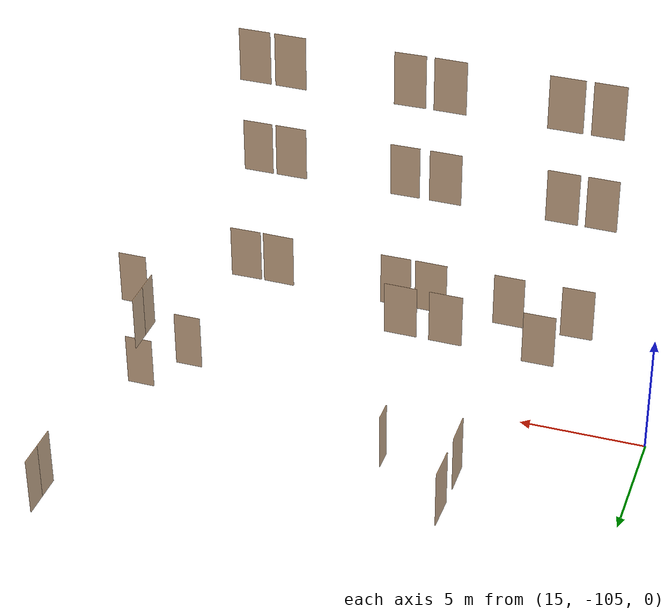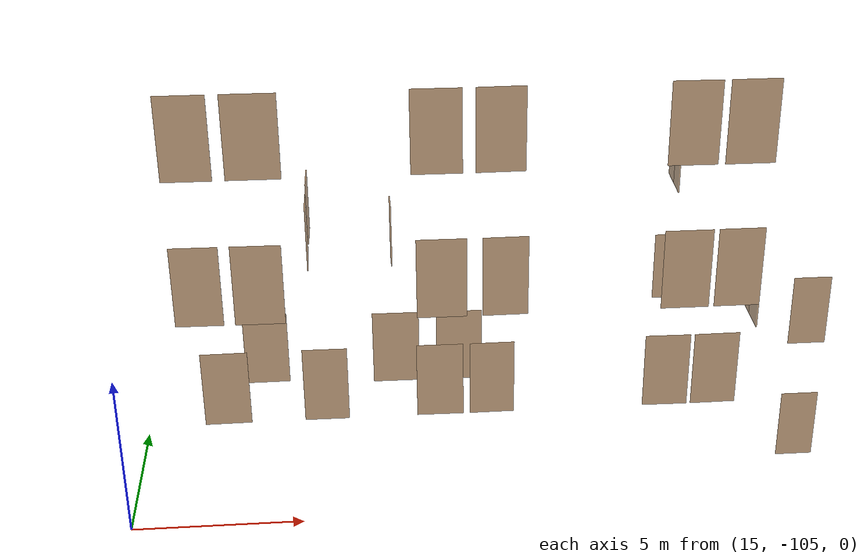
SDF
<sdf version="1.7">
 <world name="sim_world">
  <model name="Snull17">
   <pose>35.226505619236065 -102.68442668857105 0.0 0 0 3.141592653589793</pose>
   <link name="right">
    <pose>0 0 1.11 0 0 0</pose>
    <visual name="right_visual">
     <geometry><box><size>1.1178422880185204 0.03 2.2</size></box></geometry>
     <material>
      <ambient>0.5 0.25 0 0.6</ambient>
      <diffuse>0.5 0.25 0 0.6</diffuse>
      <pbr><metal><metalness>0.0</metalness></metal></pbr>
     </material>
    </visual>
    <collision name="right_collision">
     <geometry><box><size>1.1178422880185204 0.03 2.2</size></box></geometry>
     <surface><contact><collide_bitmask>0x02</collide_bitmask></contact></surface>
    </collision>
    <inertial>
     <mass>50.0</mass>
     <inertia><ixx>20.17041666666667</ixx><iyy>25.37321408701034</iyy><izz>5.210297420343669</izz></inertia>
    </inertial>
   </link>
   <joint name="right_joint" type="revolute">
    <parent>world</parent>
    <child>right</child>
    <axis><xyz>0 0 -1</xyz><limit><lower>0</lower><upper>1.57</upper></limit></axis>
    <pose>0.5639211440092602 0 0 0 0 0</pose>
   </joint>
   <plugin name="register_component" filename="libregister_component.so">
    <component name="Door">
     <v_max_door>0.5</v_max_door>
     <a_max_door>0.3</a_max_door>
     <a_nom_door>0.15</a_nom_door>
     <dx_min_door>0.01</dx_min_door>
     <f_max_door>500.0</f_max_door>
     <ros_interface>true</ros_interface>
     <door name="Snull17" type="SwingDoor" left_joint_name="empty_joint" right_joint_name="right_joint"/>
    </component>
   </plugin>
  </model>
  <model name="0null17">
   <pose>35.226505619236065 -102.68442668857105 4.0 0 0 3.141592653589793</pose>
   <link name="right">
    <pose>0 0 1.11 0 0 0</pose>
    <visual name="right_visual">
     <geometry><box><size>1.1178422880185204 0.03 2.2</size></box></geometry>
     <material>
      <ambient>0.5 0.25 0 0.6</ambient>
      <diffuse>0.5 0.25 0 0.6</diffuse>
      <pbr><metal><metalness>0.0</metalness></metal></pbr>
     </material>
    </visual>
    <collision name="right_collision">
     <geometry><box><size>1.1178422880185204 0.03 2.2</size></box></geometry>
     <surface><contact><collide_bitmask>0x02</collide_bitmask></contact></surface>
    </collision>
    <inertial>
     <mass>50.0</mass>
     <inertia><ixx>20.17041666666667</ixx><iyy>25.37321408701034</iyy><izz>5.210297420343669</izz></inertia>
    </inertial>
   </link>
   <joint name="right_joint" type="revolute">
    <parent>world</parent>
    <child>right</child>
    <axis><xyz>0 0 -1</xyz><limit><lower>0</lower><upper>1.57</upper></limit></axis>
    <pose>0.5639211440092602 0 0 0 0 0</pose>
   </joint>
   <plugin name="register_component" filename="libregister_component.so">
    <component name="Door">
     <v_max_door>0.5</v_max_door>
     <a_max_door>0.3</a_max_door>
     <a_nom_door>0.15</a_nom_door>
     <dx_min_door>0.01</dx_min_door>
     <f_max_door>500.0</f_max_door>
     <ros_interface>true</ros_interface>
     <door name="0null17" type="SwingDoor" left_joint_name="empty_joint" right_joint_name="right_joint"/>
    </component>
   </plugin>
  </model>
  <model name="0null60">
   <pose>33.57039913377887 -90.70772504947163 4.0 0 0 1.5707963267948966</pose>
   <link name="right">
    <pose>0.44838143598551383 0 1.11 0 0 0</pose>
    <visual name="right_visual">
     <geometry><box><size>0.8867628719710277 0.03 2.2</size></box></geometry>
     <material>
      <ambient>0.5 0.25 0 0.6</ambient>
      <diffuse>0.5 0.25 0 0.6</diffuse>
      <pbr><metal><metalness>0.0</metalness></metal></pbr>
     </material>
    </visual>
    <collision name="right_collision">
     <geometry><box><size>0.8867628719710277 0.03 2.2</size></box></geometry>
     <surface><contact><collide_bitmask>0x02</collide_bitmask></contact></surface>
    </collision>
    <inertial>
     <mass>50.0</mass>
     <inertia><ixx>20.17041666666667</ixx><iyy>23.443118296276275</iyy><izz>3.2802016296096053</izz></inertia>
    </inertial>
   </link>
   <joint name="right_joint" type="revolute">
    <parent>world</parent>
    <child>right</child>
    <axis><xyz>0 0 1</xyz><limit><lower>0</lower><upper>1.57</upper></limit></axis>
    <pose>0.44838143598551383 0 0 0 0 0</pose>
   </joint>
   <link name="left">
    <pose>-0.44838143598551383 0 1.11 0 0 0</pose>
    <visual name="left_visual">
     <geometry><box><size>0.8867628719710277 0.03 2.2</size></box></geometry>
     <material>
      <ambient>0.5 0.25 0 0.6</ambient>
      <diffuse>0.5 0.25 0 0.6</diffuse>
      <pbr><metal><metalness>0.0</metalness></metal></pbr>
     </material>
    </visual>
    <collision name="left_collision">
     <geometry><box><size>0.8867628719710277 0.03 2.2</size></box></geometry>
     <surface><contact><collide_bitmask>0x02</collide_bitmask></contact></surface>
    </collision>
    <inertial>
     <mass>50.0</mass>
     <inertia><ixx>20.17041666666667</ixx><iyy>23.443118296276275</iyy><izz>3.2802016296096053</izz></inertia>
    </inertial>
   </link>
   <joint name="left_joint" type="revolute">
    <parent>world</parent>
    <child>left</child>
    <axis><xyz>0 0 1</xyz><limit><lower>-1.57</lower><upper>0</upper></limit></axis>
    <pose>-0.44838143598551383 0 0 0 0 0</pose>
   </joint>
   <plugin name="register_component" filename="libregister_component.so">
    <component name="Door">
     <v_max_door>0.5</v_max_door>
     <a_max_door>0.3</a_max_door>
     <a_nom_door>0.15</a_nom_door>
     <dx_min_door>0.01</dx_min_door>
     <f_max_door>500.0</f_max_door>
     <ros_interface>true</ros_interface>
     <door name="0null60" type="DoubleSwingDoor" left_joint_name="left_joint" right_joint_name="right_joint"/>
    </component>
   </plugin>
  </model>
  <model name="0null63">
   <pose>20.18616286450359 -96.13930478288461 4.0 0 0 1.5835833536071844</pose>
   <link name="right">
    <pose>0 0 1.11 0 0 0</pose>
    <visual name="right_visual">
     <geometry><box><size>1.24560053945507 0.03 2.2</size></box></geometry>
     <material>
      <ambient>0.5 0.25 0 0.6</ambient>
      <diffuse>0.5 0.25 0 0.6</diffuse>
      <pbr><metal><metalness>0.0</metalness></metal></pbr>
     </material>
    </visual>
    <collision name="right_collision">
     <geometry><box><size>1.24560053945507 0.03 2.2</size></box></geometry>
     <surface><contact><collide_bitmask>0x02</collide_bitmask></contact></surface>
    </collision>
    <inertial>
     <mass>50.0</mass>
     <inertia><ixx>20.17041666666667</ixx><iyy>26.631336266211513</iyy><izz>6.4684195995448395</izz></inertia>
    </inertial>
   </link>
   <joint name="right_joint" type="revolute">
    <parent>world</parent>
    <child>right</child>
    <axis><xyz>0 0 -1</xyz><limit><lower>0</lower><upper>1.57</upper></limit></axis>
    <pose>0.627800269727535 0 0 0 0 0</pose>
   </joint>
   <plugin name="register_component" filename="libregister_component.so">
    <component name="Door">
     <v_max_door>0.5</v_max_door>
     <a_max_door>0.3</a_max_door>
     <a_nom_door>0.15</a_nom_door>
     <dx_min_door>0.01</dx_min_door>
     <f_max_door>500.0</f_max_door>
     <ros_interface>true</ros_interface>
     <door name="0null63" type="SwingDoor" left_joint_name="empty_joint" right_joint_name="right_joint"/>
    </component>
   </plugin>
  </model>
  <model name="0null64">
   <pose>20.188216405929122 -94.12750625396701 4.0 0 0 -1.5826627654357746</pose>
   <link name="right">
    <pose>0 0 1.11 0 0 0</pose>
    <visual name="right_visual">
     <geometry><box><size>1.2611943041755385 0.03 2.2</size></box></geometry>
     <material>
      <ambient>0.5 0.25 0 0.6</ambient>
      <diffuse>0.5 0.25 0 0.6</diffuse>
      <pbr><metal><metalness>0.0</metalness></metal></pbr>
     </material>
    </visual>
    <collision name="right_collision">
     <geometry><box><size>1.2611943041755385 0.03 2.2</size></box></geometry>
     <surface><contact><collide_bitmask>0x02</collide_bitmask></contact></surface>
    </collision>
    <inertial>
     <mass>50.0</mass>
     <inertia><ixx>20.17041666666667</ixx><iyy>26.794212803686758</iyy><izz>6.631296137020086</izz></inertia>
    </inertial>
   </link>
   <joint name="right_joint" type="revolute">
    <parent>world</parent>
    <child>right</child>
    <axis><xyz>0 0 1</xyz><limit><lower>0</lower><upper>1.57</upper></limit></axis>
    <pose>0.6355971520877692 0 0 0 0 0</pose>
   </joint>
   <plugin name="register_component" filename="libregister_component.so">
    <component name="Door">
     <v_max_door>0.5</v_max_door>
     <a_max_door>0.3</a_max_door>
     <a_nom_door>0.15</a_nom_door>
     <dx_min_door>0.01</dx_min_door>
     <f_max_door>500.0</f_max_door>
     <ros_interface>true</ros_interface>
     <door name="0null64" type="SwingDoor" left_joint_name="empty_joint" right_joint_name="right_joint"/>
    </component>
   </plugin>
  </model>
  <model name="0null65">
   <pose>22.95015494903482 -96.27140350222149 4.0 0 0 1.5813201833732315</pose>
   <link name="right">
    <pose>0 0 1.11 0 0 0</pose>
    <visual name="right_visual">
     <geometry><box><size>0.7492549775247888 0.03 2.2</size></box></geometry>
     <material>
      <ambient>0.5 0.25 0 0.6</ambient>
      <diffuse>0.5 0.25 0 0.6</diffuse>
      <pbr><metal><metalness>0.0</metalness></metal></pbr>
     </material>
    </visual>
    <collision name="right_collision">
     <geometry><box><size>0.7492549775247888 0.03 2.2</size></box></geometry>
     <surface><contact><collide_bitmask>0x02</collide_bitmask></contact></surface>
    </collision>
    <inertial>
     <mass>50.0</mass>
     <inertia><ixx>20.17041666666667</ixx><iyy>22.505762588940303</iyy><izz>2.3428459222736326</izz></inertia>
    </inertial>
   </link>
   <joint name="right_joint" type="revolute">
    <parent>world</parent>
    <child>right</child>
    <axis><xyz>0 0 1</xyz><limit><lower>0</lower><upper>1.57</upper></limit></axis>
    <pose>0.3796274887623944 0 0 0 0 0</pose>
   </joint>
   <plugin name="register_component" filename="libregister_component.so">
    <component name="Door">
     <v_max_door>0.5</v_max_door>
     <a_max_door>0.3</a_max_door>
     <a_nom_door>0.15</a_nom_door>
     <dx_min_door>0.01</dx_min_door>
     <f_max_door>500.0</f_max_door>
     <ros_interface>true</ros_interface>
     <door name="0null65" type="SwingDoor" left_joint_name="empty_joint" right_joint_name="right_joint"/>
    </component>
   </plugin>
  </model>
  <model name="0null66">
   <pose>19.16971586454093 -103.64021954224688 4.0 0 0 0.006799978698178858</pose>
   <link name="right">
    <pose>0 0 1.11 0 0 0</pose>
    <visual name="right_visual">
     <geometry><box><size>1.2419051338744223 0.03 2.2</size></box></geometry>
     <material>
      <ambient>0.5 0.25 0 0.6</ambient>
      <diffuse>0.5 0.25 0 0.6</diffuse>
      <pbr><metal><metalness>0.0</metalness></metal></pbr>
     </material>
    </visual>
    <collision name="right_collision">
     <geometry><box><size>1.2419051338744223 0.03 2.2</size></box></geometry>
     <surface><contact><collide_bitmask>0x02</collide_bitmask></contact></surface>
    </collision>
    <inertial>
     <mass>50.0</mass>
     <inertia><ixx>20.17041666666667</ixx><iyy>26.5930348397652</iyy><izz>6.430118173098528</izz></inertia>
    </inertial>
   </link>
   <joint name="right_joint" type="revolute">
    <parent>world</parent>
    <child>right</child>
    <axis><xyz>0 0 -1</xyz><limit><lower>0</lower><upper>1.57</upper></limit></axis>
    <pose>0.6259525669372111 0 0 0 0 0</pose>
   </joint>
   <plugin name="register_component" filename="libregister_component.so">
    <component name="Door">
     <v_max_door>0.5</v_max_door>
     <a_max_door>0.3</a_max_door>
     <a_nom_door>0.15</a_nom_door>
     <dx_min_door>0.01</dx_min_door>
     <f_max_door>500.0</f_max_door>
     <ros_interface>true</ros_interface>
     <door name="0null66" type="SwingDoor" left_joint_name="empty_joint" right_joint_name="right_joint"/>
    </component>
   </plugin>
  </model>
  <model name="0null67">
   <pose>22.862132696113193 -103.85111824664892 4.0 0 0 -0.007718906835754375</pose>
   <link name="right">
    <pose>0 0 1.11 0 0 0</pose>
    <visual name="right_visual">
     <geometry><box><size>1.3105411505811324 0.03 2.2</size></box></geometry>
     <material>
      <ambient>0.5 0.25 0 0.6</ambient>
      <diffuse>0.5 0.25 0 0.6</diffuse>
      <pbr><metal><metalness>0.0</metalness></metal></pbr>
     </material>
    </visual>
    <collision name="right_collision">
     <geometry><box><size>1.3105411505811324 0.03 2.2</size></box></geometry>
     <surface><contact><collide_bitmask>0x02</collide_bitmask></contact></surface>
    </collision>
    <inertial>
     <mass>50.0</mass>
     <inertia><ixx>20.17041666666667</ixx><iyy>27.322992114027166</iyy><izz>7.1600754473604935</izz></inertia>
    </inertial>
   </link>
   <joint name="right_joint" type="revolute">
    <parent>world</parent>
    <child>right</child>
    <axis><xyz>0 0 -1</xyz><limit><lower>0</lower><upper>1.57</upper></limit></axis>
    <pose>0.6602705752905662 0 0 0 0 0</pose>
   </joint>
   <plugin name="register_component" filename="libregister_component.so">
    <component name="Door">
     <v_max_door>0.5</v_max_door>
     <a_max_door>0.3</a_max_door>
     <a_nom_door>0.15</a_nom_door>
     <dx_min_door>0.01</dx_min_door>
     <f_max_door>500.0</f_max_door>
     <ros_interface>true</ros_interface>
     <door name="0null67" type="SwingDoor" left_joint_name="empty_joint" right_joint_name="right_joint"/>
    </component>
   </plugin>
  </model>
  <model name="0null68">
   <pose>24.66439532539296 -103.86896538849263 4.0 0 0 3.1298930987487013</pose>
   <link name="right">
    <pose>0 0 1.11 0 0 0</pose>
    <visual name="right_visual">
     <geometry><box><size>1.2952829252233309 0.03 2.2</size></box></geometry>
     <material>
      <ambient>0.5 0.25 0 0.6</ambient>
      <diffuse>0.5 0.25 0 0.6</diffuse>
      <pbr><metal><metalness>0.0</metalness></metal></pbr>
     </material>
    </visual>
    <collision name="right_collision">
     <geometry><box><size>1.2952829252233309 0.03 2.2</size></box></geometry>
     <surface><contact><collide_bitmask>0x02</collide_bitmask></contact></surface>
    </collision>
    <inertial>
     <mass>50.0</mass>
     <inertia><ixx>20.17041666666667</ixx><iyy>27.15732440156296</iyy><izz>6.994407734896288</izz></inertia>
    </inertial>
   </link>
   <joint name="right_joint" type="revolute">
    <parent>world</parent>
    <child>right</child>
    <axis><xyz>0 0 1</xyz><limit><lower>0</lower><upper>1.57</upper></limit></axis>
    <pose>0.6526414626116654 0 0 0 0 0</pose>
   </joint>
   <plugin name="register_component" filename="libregister_component.so">
    <component name="Door">
     <v_max_door>0.5</v_max_door>
     <a_max_door>0.3</a_max_door>
     <a_nom_door>0.15</a_nom_door>
     <dx_min_door>0.01</dx_min_door>
     <f_max_door>500.0</f_max_door>
     <ros_interface>true</ros_interface>
     <door name="0null68" type="SwingDoor" left_joint_name="empty_joint" right_joint_name="right_joint"/>
    </component>
   </plugin>
  </model>
  <model name="0null69">
   <pose>18.168259716984643 -105.75603927864682 4.0 0 0 0.01617173090646608</pose>
   <link name="right">
    <pose>0 0 1.11 0 0 0</pose>
    <visual name="right_visual">
     <geometry><box><size>1.25988938217987 0.03 2.2</size></box></geometry>
     <material>
      <ambient>0.5 0.25 0 0.6</ambient>
      <diffuse>0.5 0.25 0 0.6</diffuse>
      <pbr><metal><metalness>0.0</metalness></metal></pbr>
     </material>
    </visual>
    <collision name="right_collision">
     <geometry><box><size>1.25988938217987 0.03 2.2</size></box></geometry>
     <surface><contact><collide_bitmask>0x02</collide_bitmask></contact></surface>
    </collision>
    <inertial>
     <mass>50.0</mass>
     <inertia><ixx>20.17041666666667</ixx><iyy>26.780505230539898</iyy><izz>6.617588563873228</izz></inertia>
    </inertial>
   </link>
   <joint name="right_joint" type="revolute">
    <parent>world</parent>
    <child>right</child>
    <axis><xyz>0 0 1</xyz><limit><lower>0</lower><upper>1.57</upper></limit></axis>
    <pose>0.634944691089935 0 0 0 0 0</pose>
   </joint>
   <plugin name="register_component" filename="libregister_component.so">
    <component name="Door">
     <v_max_door>0.5</v_max_door>
     <a_max_door>0.3</a_max_door>
     <a_nom_door>0.15</a_nom_door>
     <dx_min_door>0.01</dx_min_door>
     <f_max_door>500.0</f_max_door>
     <ros_interface>true</ros_interface>
     <door name="0null69" type="SwingDoor" left_joint_name="empty_joint" right_joint_name="right_joint"/>
    </component>
   </plugin>
  </model>
  <model name="0null70">
   <pose>20.87564873240487 -105.74041369525438 4.0 0 0 -0.006083133474797345</pose>
   <link name="right">
    <pose>0 0 1.11 0 0 0</pose>
    <visual name="right_visual">
     <geometry><box><size>1.2114317019619647 0.03 2.2</size></box></geometry>
     <material>
      <ambient>0.5 0.25 0 0.6</ambient>
      <diffuse>0.5 0.25 0 0.6</diffuse>
      <pbr><metal><metalness>0.0</metalness></metal></pbr>
     </material>
    </visual>
    <collision name="right_collision">
     <geometry><box><size>1.2114317019619647 0.03 2.2</size></box></geometry>
     <surface><contact><collide_bitmask>0x02</collide_bitmask></contact></surface>
    </collision>
    <inertial>
     <mass>50.0</mass>
     <inertia><ixx>20.17041666666667</ixx><iyy>26.281528202160267</iyy><izz>6.118611535493594</izz></inertia>
    </inertial>
   </link>
   <joint name="right_joint" type="revolute">
    <parent>world</parent>
    <child>right</child>
    <axis><xyz>0 0 1</xyz><limit><lower>0</lower><upper>1.57</upper></limit></axis>
    <pose>0.6107158509809824 0 0 0 0 0</pose>
   </joint>
   <plugin name="register_component" filename="libregister_component.so">
    <component name="Door">
     <v_max_door>0.5</v_max_door>
     <a_max_door>0.3</a_max_door>
     <a_nom_door>0.15</a_nom_door>
     <dx_min_door>0.01</dx_min_door>
     <f_max_door>500.0</f_max_door>
     <ros_interface>true</ros_interface>
     <door name="0null70" type="SwingDoor" left_joint_name="empty_joint" right_joint_name="right_joint"/>
    </component>
   </plugin>
  </model>
  <model name="0null71">
   <pose>24.005600567524162 -105.73826681103677 4.0 0 0 -0.013497754728378332</pose>
   <link name="right">
    <pose>0 0 1.11 0 0 0</pose>
    <visual name="right_visual">
     <geometry><box><size>1.2735429760161787 0.03 2.2</size></box></geometry>
     <material>
      <ambient>0.5 0.25 0 0.6</ambient>
      <diffuse>0.5 0.25 0 0.6</diffuse>
      <pbr><metal><metalness>0.0</metalness></metal></pbr>
     </material>
    </visual>
    <collision name="right_collision">
     <geometry><box><size>1.2735429760161787 0.03 2.2</size></box></geometry>
     <surface><contact><collide_bitmask>0x02</collide_bitmask></contact></surface>
    </collision>
    <inertial>
     <mass>50.0</mass>
     <inertia><ixx>20.17041666666667</ixx><iyy>26.924632132333944</iyy><izz>6.7617154656672716</izz></inertia>
    </inertial>
   </link>
   <joint name="right_joint" type="revolute">
    <parent>world</parent>
    <child>right</child>
    <axis><xyz>0 0 1</xyz><limit><lower>0</lower><upper>1.57</upper></limit></axis>
    <pose>0.6417714880080894 0 0 0 0 0</pose>
   </joint>
   <plugin name="register_component" filename="libregister_component.so">
    <component name="Door">
     <v_max_door>0.5</v_max_door>
     <a_max_door>0.3</a_max_door>
     <a_nom_door>0.15</a_nom_door>
     <dx_min_door>0.01</dx_min_door>
     <f_max_door>500.0</f_max_door>
     <ros_interface>true</ros_interface>
     <door name="0null71" type="SwingDoor" left_joint_name="empty_joint" right_joint_name="right_joint"/>
    </component>
   </plugin>
  </model>
  <model name="0null72">
   <pose>25.436470895717413 -105.74222454542053 4.0 0 0 -3.133952271064675</pose>
   <link name="right">
    <pose>0 0 1.11 0 0 0</pose>
    <visual name="right_visual">
     <geometry><box><size>1.2214887313923475 0.03 2.2</size></box></geometry>
     <material>
      <ambient>0.5 0.25 0 0.6</ambient>
      <diffuse>0.5 0.25 0 0.6</diffuse>
      <pbr><metal><metalness>0.0</metalness></metal></pbr>
     </material>
    </visual>
    <collision name="right_collision">
     <geometry><box><size>1.2214887313923475 0.03 2.2</size></box></geometry>
     <surface><contact><collide_bitmask>0x02</collide_bitmask></contact></surface>
    </collision>
    <inertial>
     <mass>50.0</mass>
     <inertia><ixx>20.17041666666667</ixx><iyy>26.38347800382703</iyy><izz>6.22056133716036</izz></inertia>
    </inertial>
   </link>
   <joint name="right_joint" type="revolute">
    <parent>world</parent>
    <child>right</child>
    <axis><xyz>0 0 -1</xyz><limit><lower>0</lower><upper>1.57</upper></limit></axis>
    <pose>0.6157443656961737 0 0 0 0 0</pose>
   </joint>
   <plugin name="register_component" filename="libregister_component.so">
    <component name="Door">
     <v_max_door>0.5</v_max_door>
     <a_max_door>0.3</a_max_door>
     <a_nom_door>0.15</a_nom_door>
     <dx_min_door>0.01</dx_min_door>
     <f_max_door>500.0</f_max_door>
     <ros_interface>true</ros_interface>
     <door name="0null72" type="SwingDoor" left_joint_name="empty_joint" right_joint_name="right_joint"/>
    </component>
   </plugin>
  </model>
  <model name="0null73">
   <pose>30.30814322518013 -105.73806145689423 4.0 0 0 -0.013854213525104088</pose>
   <link name="right">
    <pose>0 0 1.11 0 0 0</pose>
    <visual name="right_visual">
     <geometry><box><size>1.248605645767914 0.03 2.2</size></box></geometry>
     <material>
      <ambient>0.5 0.25 0 0.6</ambient>
      <diffuse>0.5 0.25 0 0.6</diffuse>
      <pbr><metal><metalness>0.0</metalness></metal></pbr>
     </material>
    </visual>
    <collision name="right_collision">
     <geometry><box><size>1.248605645767914 0.03 2.2</size></box></geometry>
     <surface><contact><collide_bitmask>0x02</collide_bitmask></contact></surface>
    </collision>
    <inertial>
     <mass>50.0</mass>
     <inertia><ixx>20.17041666666667</ixx><iyy>26.662566911014626</iyy><izz>6.499650244347957</izz></inertia>
    </inertial>
   </link>
   <joint name="right_joint" type="revolute">
    <parent>world</parent>
    <child>right</child>
    <axis><xyz>0 0 1</xyz><limit><lower>0</lower><upper>1.57</upper></limit></axis>
    <pose>0.629302822883957 0 0 0 0 0</pose>
   </joint>
   <plugin name="register_component" filename="libregister_component.so">
    <component name="Door">
     <v_max_door>0.5</v_max_door>
     <a_max_door>0.3</a_max_door>
     <a_nom_door>0.15</a_nom_door>
     <dx_min_door>0.01</dx_min_door>
     <f_max_door>500.0</f_max_door>
     <ros_interface>true</ros_interface>
     <door name="0null73" type="SwingDoor" left_joint_name="empty_joint" right_joint_name="right_joint"/>
    </component>
   </plugin>
  </model>
  <model name="0null74">
   <pose>31.677556659074767 -105.73931225030796 4.0 0 0 -3.1298945166294154</pose>
   <link name="right">
    <pose>0 0 1.11 0 0 0</pose>
    <visual name="right_visual">
     <geometry><box><size>1.2539478870004306 0.03 2.2</size></box></geometry>
     <material>
      <ambient>0.5 0.25 0 0.6</ambient>
      <diffuse>0.5 0.25 0 0.6</diffuse>
      <pbr><metal><metalness>0.0</metalness></metal></pbr>
     </material>
    </visual>
    <collision name="right_collision">
     <geometry><box><size>1.2539478870004306 0.03 2.2</size></box></geometry>
     <surface><contact><collide_bitmask>0x02</collide_bitmask></contact></surface>
    </collision>
    <inertial>
     <mass>50.0</mass>
     <inertia><ixx>20.17041666666667</ixx><iyy>26.718272097136857</iyy><izz>6.555355430470185</izz></inertia>
    </inertial>
   </link>
   <joint name="right_joint" type="revolute">
    <parent>world</parent>
    <child>right</child>
    <axis><xyz>0 0 -1</xyz><limit><lower>0</lower><upper>1.57</upper></limit></axis>
    <pose>0.6319739435002153 0 0 0 0 0</pose>
   </joint>
   <plugin name="register_component" filename="libregister_component.so">
    <component name="Door">
     <v_max_door>0.5</v_max_door>
     <a_max_door>0.3</a_max_door>
     <a_nom_door>0.15</a_nom_door>
     <dx_min_door>0.01</dx_min_door>
     <f_max_door>500.0</f_max_door>
     <ros_interface>true</ros_interface>
     <door name="0null74" type="SwingDoor" left_joint_name="empty_joint" right_joint_name="right_joint"/>
    </component>
   </plugin>
  </model>
  <model name="0null75">
   <pose>31.63614979651269 -99.47522682298467 4.0 0 0 3.141592653589793</pose>
   <link name="right">
    <pose>0 0 1.11 0 0 0</pose>
    <visual name="right_visual">
     <geometry><box><size>1.026179666206177 0.03 2.2</size></box></geometry>
     <material>
      <ambient>0.5 0.25 0 0.6</ambient>
      <diffuse>0.5 0.25 0 0.6</diffuse>
      <pbr><metal><metalness>0.0</metalness></metal></pbr>
     </material>
    </visual>
    <collision name="right_collision">
     <geometry><box><size>1.026179666206177 0.03 2.2</size></box></geometry>
     <surface><contact><collide_bitmask>0x02</collide_bitmask></contact></surface>
    </collision>
    <inertial>
     <mass>50.0</mass>
     <inertia><ixx>20.17041666666667</ixx><iyy>24.554352947229262</iyy><izz>4.391436280562588</izz></inertia>
    </inertial>
   </link>
   <joint name="right_joint" type="revolute">
    <parent>world</parent>
    <child>right</child>
    <axis><xyz>0 0 -1</xyz><limit><lower>0</lower><upper>1.57</upper></limit></axis>
    <pose>0.5180898331030885 0 0 0 0 0</pose>
   </joint>
   <plugin name="register_component" filename="libregister_component.so">
    <component name="Door">
     <v_max_door>0.5</v_max_door>
     <a_max_door>0.3</a_max_door>
     <a_nom_door>0.15</a_nom_door>
     <dx_min_door>0.01</dx_min_door>
     <f_max_door>500.0</f_max_door>
     <ros_interface>true</ros_interface>
     <door name="0null75" type="SwingDoor" left_joint_name="empty_joint" right_joint_name="right_joint"/>
    </component>
   </plugin>
  </model>
  <model name="nullnueva4">
   <pose>33.962140163536546 -100.72590822536677 4.0 0 0 1.5707963267948966</pose>
   <link name="right">
    <pose>0.4604786618377297 0 1.11 0 0 0</pose>
    <visual name="right_visual">
     <geometry><box><size>0.9109573236754593 0.03 2.2</size></box></geometry>
     <material>
      <ambient>0.5 0.25 0 0.6</ambient>
      <diffuse>0.5 0.25 0 0.6</diffuse>
      <pbr><metal><metalness>0.0</metalness></metal></pbr>
     </material>
    </visual>
    <collision name="right_collision">
     <geometry><box><size>0.9109573236754593 0.03 2.2</size></box></geometry>
     <surface><contact><collide_bitmask>0x02</collide_bitmask></contact></surface>
    </collision>
    <inertial>
     <mass>50.0</mass>
     <inertia><ixx>20.17041666666667</ixx><iyy>23.624346856491485</iyy><izz>3.4614301898248154</izz></inertia>
    </inertial>
   </link>
   <joint name="right_joint" type="revolute">
    <parent>world</parent>
    <child>right</child>
    <axis><xyz>0 0 -1</xyz><limit><lower>0</lower><upper>1.57</upper></limit></axis>
    <pose>0.4604786618377297 0 0 0 0 0</pose>
   </joint>
   <link name="left">
    <pose>-0.4604786618377297 0 1.11 0 0 0</pose>
    <visual name="left_visual">
     <geometry><box><size>0.9109573236754593 0.03 2.2</size></box></geometry>
     <material>
      <ambient>0.5 0.25 0 0.6</ambient>
      <diffuse>0.5 0.25 0 0.6</diffuse>
      <pbr><metal><metalness>0.0</metalness></metal></pbr>
     </material>
    </visual>
    <collision name="left_collision">
     <geometry><box><size>0.9109573236754593 0.03 2.2</size></box></geometry>
     <surface><contact><collide_bitmask>0x02</collide_bitmask></contact></surface>
    </collision>
    <inertial>
     <mass>50.0</mass>
     <inertia><ixx>20.17041666666667</ixx><iyy>23.624346856491485</iyy><izz>3.4614301898248154</izz></inertia>
    </inertial>
   </link>
   <joint name="left_joint" type="revolute">
    <parent>world</parent>
    <child>left</child>
    <axis><xyz>0 0 -1</xyz><limit><lower>-1.57</lower><upper>0</upper></limit></axis>
    <pose>-0.4604786618377297 0 0 0 0 0</pose>
   </joint>
   <plugin name="register_component" filename="libregister_component.so">
    <component name="Door">
     <v_max_door>0.5</v_max_door>
     <a_max_door>0.3</a_max_door>
     <a_nom_door>0.15</a_nom_door>
     <dx_min_door>0.01</dx_min_door>
     <f_max_door>500.0</f_max_door>
     <ros_interface>true</ros_interface>
     <door name="nullnueva4" type="DoubleSwingDoor" left_joint_name="left_joint" right_joint_name="right_joint"/>
    </component>
   </plugin>
  </model>
  <model name="1null69">
   <pose>17.828062577007792 -107.38991151103306 8.0 0 0 -0.010975243007221662</pose>
   <link name="right">
    <pose>0 0 1.11 0 0 0</pose>
    <visual name="right_visual">
     <geometry><box><size>1.2215269588517066 0.03 2.2</size></box></geometry>
     <material>
      <ambient>0.5 0.25 0 0.6</ambient>
      <diffuse>0.5 0.25 0 0.6</diffuse>
      <pbr><metal><metalness>0.0</metalness></metal></pbr>
     </material>
    </visual>
    <collision name="right_collision">
     <geometry><box><size>1.2215269588517066 0.03 2.2</size></box></geometry>
     <surface><contact><collide_bitmask>0x02</collide_bitmask></contact></surface>
    </collision>
    <inertial>
     <mass>50.0</mass>
     <inertia><ixx>20.17041666666667</ixx><iyy>26.38386713000625</iyy><izz>6.2209504633395785</izz></inertia>
    </inertial>
   </link>
   <joint name="right_joint" type="revolute">
    <parent>world</parent>
    <child>right</child>
    <axis><xyz>0 0 1</xyz><limit><lower>0</lower><upper>1.57</upper></limit></axis>
    <pose>0.6157634794258533 0 0 0 0 0</pose>
   </joint>
   <plugin name="register_component" filename="libregister_component.so">
    <component name="Door">
     <v_max_door>0.5</v_max_door>
     <a_max_door>0.3</a_max_door>
     <a_nom_door>0.15</a_nom_door>
     <dx_min_door>0.01</dx_min_door>
     <f_max_door>500.0</f_max_door>
     <ros_interface>true</ros_interface>
     <door name="1null69" type="SwingDoor" left_joint_name="empty_joint" right_joint_name="right_joint"/>
    </component>
   </plugin>
  </model>
  <model name="1null70">
   <pose>19.362916775566582 -107.40564910577598 8.0 0 0 -0.007024894642491466</pose>
   <link name="right">
    <pose>0 0 1.11 0 0 0</pose>
    <visual name="right_visual">
     <geometry><box><size>1.270918735887897 0.03 2.2</size></box></geometry>
     <material>
      <ambient>0.5 0.25 0 0.6</ambient>
      <diffuse>0.5 0.25 0 0.6</diffuse>
      <pbr><metal><metalness>0.0</metalness></metal></pbr>
     </material>
    </visual>
    <collision name="right_collision">
     <geometry><box><size>1.270918735887897 0.03 2.2</size></box></geometry>
     <surface><contact><collide_bitmask>0x02</collide_bitmask></contact></surface>
    </collision>
    <inertial>
     <mass>50.0</mass>
     <inertia><ixx>20.17041666666667</ixx><iyy>26.896810138462047</iyy><izz>6.733893471795376</izz></inertia>
    </inertial>
   </link>
   <joint name="right_joint" type="revolute">
    <parent>world</parent>
    <child>right</child>
    <axis><xyz>0 0 -1</xyz><limit><lower>0</lower><upper>1.57</upper></limit></axis>
    <pose>0.6404593679439485 0 0 0 0 0</pose>
   </joint>
   <plugin name="register_component" filename="libregister_component.so">
    <component name="Door">
     <v_max_door>0.5</v_max_door>
     <a_max_door>0.3</a_max_door>
     <a_nom_door>0.15</a_nom_door>
     <dx_min_door>0.01</dx_min_door>
     <f_max_door>500.0</f_max_door>
     <ros_interface>true</ros_interface>
     <door name="1null70" type="SwingDoor" left_joint_name="empty_joint" right_joint_name="right_joint"/>
    </component>
   </plugin>
  </model>
  <model name="1null71">
   <pose>23.987716088563626 -107.40143001157443 8.0 0 0 -0.008761052729590007</pose>
   <link name="right">
    <pose>0 0 1.11 0 0 0</pose>
    <visual name="right_visual">
     <geometry><box><size>1.2813164062270233 0.03 2.2</size></box></geometry>
     <material>
      <ambient>0.5 0.25 0 0.6</ambient>
      <diffuse>0.5 0.25 0 0.6</diffuse>
      <pbr><metal><metalness>0.0</metalness></metal></pbr>
     </material>
    </visual>
    <collision name="right_collision">
     <geometry><box><size>1.2813164062270233 0.03 2.2</size></box></geometry>
     <surface><contact><collide_bitmask>0x02</collide_bitmask></contact></surface>
    </collision>
    <inertial>
     <mass>50.0</mass>
     <inertia><ixx>20.17041666666667</ixx><iyy>27.00738222027723</iyy><izz>6.844465553610559</izz></inertia>
    </inertial>
   </link>
   <joint name="right_joint" type="revolute">
    <parent>world</parent>
    <child>right</child>
    <axis><xyz>0 0 1</xyz><limit><lower>0</lower><upper>1.57</upper></limit></axis>
    <pose>0.6456582031135116 0 0 0 0 0</pose>
   </joint>
   <plugin name="register_component" filename="libregister_component.so">
    <component name="Door">
     <v_max_door>0.5</v_max_door>
     <a_max_door>0.3</a_max_door>
     <a_nom_door>0.15</a_nom_door>
     <dx_min_door>0.01</dx_min_door>
     <f_max_door>500.0</f_max_door>
     <ros_interface>true</ros_interface>
     <door name="1null71" type="SwingDoor" left_joint_name="empty_joint" right_joint_name="right_joint"/>
    </component>
   </plugin>
  </model>
  <model name="1null72">
   <pose>25.6140275547922 -107.40527573460771 8.0 0 0 -3.1319032178558626</pose>
   <link name="right">
    <pose>0 0 1.11 0 0 0</pose>
    <visual name="right_visual">
     <geometry><box><size>1.1730074054445625 0.03 2.2</size></box></geometry>
     <material>
      <ambient>0.5 0.25 0 0.6</ambient>
      <diffuse>0.5 0.25 0 0.6</diffuse>
      <pbr><metal><metalness>0.0</metalness></metal></pbr>
     </material>
    </visual>
    <collision name="right_collision">
     <geometry><box><size>1.1730074054445625 0.03 2.2</size></box></geometry>
     <surface><contact><collide_bitmask>0x02</collide_bitmask></contact></surface>
    </collision>
    <inertial>
     <mass>50.0</mass>
     <inertia><ixx>20.17041666666667</ixx><iyy>25.899776555115775</iyy><izz>5.736859888449102</izz></inertia>
    </inertial>
   </link>
   <joint name="right_joint" type="revolute">
    <parent>world</parent>
    <child>right</child>
    <axis><xyz>0 0 -1</xyz><limit><lower>0</lower><upper>1.57</upper></limit></axis>
    <pose>0.5915037027222813 0 0 0 0 0</pose>
   </joint>
   <plugin name="register_component" filename="libregister_component.so">
    <component name="Door">
     <v_max_door>0.5</v_max_door>
     <a_max_door>0.3</a_max_door>
     <a_nom_door>0.15</a_nom_door>
     <dx_min_door>0.01</dx_min_door>
     <f_max_door>500.0</f_max_door>
     <ros_interface>true</ros_interface>
     <door name="1null72" type="SwingDoor" left_joint_name="empty_joint" right_joint_name="right_joint"/>
    </component>
   </plugin>
  </model>
  <model name="1null73">
   <pose>30.292797670163893 -107.40092596049725 8.0 0 0 0.0</pose>
   <link name="right">
    <pose>0 0 1.11 0 0 0</pose>
    <visual name="right_visual">
     <geometry><box><size>1.2496049733039578 0.03 2.2</size></box></geometry>
     <material>
      <ambient>0.5 0.25 0 0.6</ambient>
      <diffuse>0.5 0.25 0 0.6</diffuse>
      <pbr><metal><metalness>0.0</metalness></metal></pbr>
     </material>
    </visual>
    <collision name="right_collision">
     <geometry><box><size>1.2496049733039578 0.03 2.2</size></box></geometry>
     <surface><contact><collide_bitmask>0x02</collide_bitmask></contact></surface>
    </collision>
    <inertial>
     <mass>50.0</mass>
     <inertia><ixx>20.17041666666667</ixx><iyy>26.672969122108274</iyy><izz>6.510052455441604</izz></inertia>
    </inertial>
   </link>
   <joint name="right_joint" type="revolute">
    <parent>world</parent>
    <child>right</child>
    <axis><xyz>0 0 1</xyz><limit><lower>0</lower><upper>1.57</upper></limit></axis>
    <pose>0.6298024866519789 0 0 0 0 0</pose>
   </joint>
   <plugin name="register_component" filename="libregister_component.so">
    <component name="Door">
     <v_max_door>0.5</v_max_door>
     <a_max_door>0.3</a_max_door>
     <a_nom_door>0.15</a_nom_door>
     <dx_min_door>0.01</dx_min_door>
     <f_max_door>500.0</f_max_door>
     <ros_interface>true</ros_interface>
     <door name="1null73" type="SwingDoor" left_joint_name="empty_joint" right_joint_name="right_joint"/>
    </component>
   </plugin>
  </model>
  <model name="1null74">
   <pose>31.659056117686575 -107.3942612851435 8.0 0 0 3.1411887638425706</pose>
   <link name="right">
    <pose>0 0 1.11 0 0 0</pose>
    <visual name="right_visual">
     <geometry><box><size>1.1917698773581549 0.03 2.2</size></box></geometry>
     <material>
      <ambient>0.5 0.25 0 0.6</ambient>
      <diffuse>0.5 0.25 0 0.6</diffuse>
      <pbr><metal><metalness>0.0</metalness></metal></pbr>
     </material>
    </visual>
    <collision name="right_collision">
     <geometry><box><size>1.1917698773581549 0.03 2.2</size></box></geometry>
     <surface><contact><collide_bitmask>0x02</collide_bitmask></contact></surface>
    </collision>
    <inertial>
     <mass>50.0</mass>
     <inertia><ixx>20.17041666666667</ixx><iyy>26.084647669076134</iyy><izz>5.921731002409464</izz></inertia>
    </inertial>
   </link>
   <joint name="right_joint" type="revolute">
    <parent>world</parent>
    <child>right</child>
    <axis><xyz>0 0 -1</xyz><limit><lower>0</lower><upper>1.57</upper></limit></axis>
    <pose>0.6008849386790774 0 0 0 0 0</pose>
   </joint>
   <plugin name="register_component" filename="libregister_component.so">
    <component name="Door">
     <v_max_door>0.5</v_max_door>
     <a_max_door>0.3</a_max_door>
     <a_nom_door>0.15</a_nom_door>
     <dx_min_door>0.01</dx_min_door>
     <f_max_door>500.0</f_max_door>
     <ros_interface>true</ros_interface>
     <door name="1null74" type="SwingDoor" left_joint_name="empty_joint" right_joint_name="right_joint"/>
    </component>
   </plugin>
  </model>
  <model name="2null69">
   <pose>17.837172833513783 -107.4098308628607 12.0 0 0 -0.003246741838371214</pose>
   <link name="right">
    <pose>0 0 1.11 0 0 0</pose>
    <visual name="right_visual">
     <geometry><box><size>1.2434882928568716 0.03 2.2</size></box></geometry>
     <material>
      <ambient>0.5 0.25 0 0.6</ambient>
      <diffuse>0.5 0.25 0 0.6</diffuse>
      <pbr><metal><metalness>0.0</metalness></metal></pbr>
     </material>
    </visual>
    <collision name="right_collision">
     <geometry><box><size>1.2434882928568716 0.03 2.2</size></box></geometry>
     <surface><contact><collide_bitmask>0x02</collide_bitmask></contact></surface>
    </collision>
    <inertial>
     <mass>50.0</mass>
     <inertia><ixx>20.17041666666667</ixx><iyy>26.609429726967072</iyy><izz>6.446513060300403</izz></inertia>
    </inertial>
   </link>
   <joint name="right_joint" type="revolute">
    <parent>world</parent>
    <child>right</child>
    <axis><xyz>0 0 1</xyz><limit><lower>0</lower><upper>1.57</upper></limit></axis>
    <pose>0.6267441464284358 0 0 0 0 0</pose>
   </joint>
   <plugin name="register_component" filename="libregister_component.so">
    <component name="Door">
     <v_max_door>0.5</v_max_door>
     <a_max_door>0.3</a_max_door>
     <a_nom_door>0.15</a_nom_door>
     <dx_min_door>0.01</dx_min_door>
     <f_max_door>500.0</f_max_door>
     <ros_interface>true</ros_interface>
     <door name="2null69" type="SwingDoor" left_joint_name="empty_joint" right_joint_name="right_joint"/>
    </component>
   </plugin>
  </model>
  <model name="2null70">
   <pose>19.447093305454942 -107.41352723742665 12.0 0 0 -0.005942042390492167</pose>
   <link name="right">
    <pose>0 0 1.11 0 0 0</pose>
    <visual name="right_visual">
     <geometry><box><size>1.3535382411789674 0.03 2.2</size></box></geometry>
     <material>
      <ambient>0.5 0.25 0 0.6</ambient>
      <diffuse>0.5 0.25 0 0.6</diffuse>
      <pbr><metal><metalness>0.0</metalness></metal></pbr>
     </material>
    </visual>
    <collision name="right_collision">
     <geometry><box><size>1.3535382411789674 0.03 2.2</size></box></geometry>
     <surface><contact><collide_bitmask>0x02</collide_bitmask></contact></surface>
    </collision>
    <inertial>
     <mass>50.0</mass>
     <inertia><ixx>20.17041666666667</ixx><iyy>27.800274043057726</iyy><izz>7.637357376391052</izz></inertia>
    </inertial>
   </link>
   <joint name="right_joint" type="revolute">
    <parent>world</parent>
    <child>right</child>
    <axis><xyz>0 0 -1</xyz><limit><lower>0</lower><upper>1.57</upper></limit></axis>
    <pose>0.6817691205894837 0 0 0 0 0</pose>
   </joint>
   <plugin name="register_component" filename="libregister_component.so">
    <component name="Door">
     <v_max_door>0.5</v_max_door>
     <a_max_door>0.3</a_max_door>
     <a_nom_door>0.15</a_nom_door>
     <dx_min_door>0.01</dx_min_door>
     <f_max_door>500.0</f_max_door>
     <ros_interface>true</ros_interface>
     <door name="2null70" type="SwingDoor" left_joint_name="empty_joint" right_joint_name="right_joint"/>
    </component>
   </plugin>
  </model>
  <model name="2null71">
   <pose>23.89599746107604 -107.41729828622627 12.0 0 0 -0.010918186025135083</pose>
   <link name="right">
    <pose>0 0 1.11 0 0 0</pose>
    <visual name="right_visual">
     <geometry><box><size>1.272419713259015 0.03 2.2</size></box></geometry>
     <material>
      <ambient>0.5 0.25 0 0.6</ambient>
      <diffuse>0.5 0.25 0 0.6</diffuse>
      <pbr><metal><metalness>0.0</metalness></metal></pbr>
     </material>
    </visual>
    <collision name="right_collision">
     <geometry><box><size>1.272419713259015 0.03 2.2</size></box></geometry>
     <surface><contact><collide_bitmask>0x02</collide_bitmask></contact></surface>
    </collision>
    <inertial>
     <mass>50.0</mass>
     <inertia><ixx>20.17041666666667</ixx><iyy>26.91271636120898</iyy><izz>6.7497996945423075</izz></inertia>
    </inertial>
   </link>
   <joint name="right_joint" type="revolute">
    <parent>world</parent>
    <child>right</child>
    <axis><xyz>0 0 1</xyz><limit><lower>0</lower><upper>1.57</upper></limit></axis>
    <pose>0.6412098566295075 0 0 0 0 0</pose>
   </joint>
   <plugin name="register_component" filename="libregister_component.so">
    <component name="Door">
     <v_max_door>0.5</v_max_door>
     <a_max_door>0.3</a_max_door>
     <a_nom_door>0.15</a_nom_door>
     <dx_min_door>0.01</dx_min_door>
     <f_max_door>500.0</f_max_door>
     <ros_interface>true</ros_interface>
     <door name="2null71" type="SwingDoor" left_joint_name="empty_joint" right_joint_name="right_joint"/>
    </component>
   </plugin>
  </model>
  <model name="2null72">
   <pose>25.470914385991097 -107.41378859724445 12.0 0 0 -3.1247887669162013</pose>
   <link name="right">
    <pose>0 0 1.11 0 0 0</pose>
    <visual name="right_visual">
     <geometry><box><size>1.2410073705488442 0.03 2.2</size></box></geometry>
     <material>
      <ambient>0.5 0.25 0 0.6</ambient>
      <diffuse>0.5 0.25 0 0.6</diffuse>
      <pbr><metal><metalness>0.0</metalness></metal></pbr>
     </material>
    </visual>
    <collision name="right_collision">
     <geometry><box><size>1.2410073705488442 0.03 2.2</size></box></geometry>
     <surface><contact><collide_bitmask>0x02</collide_bitmask></contact></surface>
    </collision>
    <inertial>
     <mass>50.0</mass>
     <inertia><ixx>20.17041666666667</ixx><iyy>26.58374705731899</iyy><izz>6.420830390652319</izz></inertia>
    </inertial>
   </link>
   <joint name="right_joint" type="revolute">
    <parent>world</parent>
    <child>right</child>
    <axis><xyz>0 0 -1</xyz><limit><lower>0</lower><upper>1.57</upper></limit></axis>
    <pose>0.6255036852744221 0 0 0 0 0</pose>
   </joint>
   <plugin name="register_component" filename="libregister_component.so">
    <component name="Door">
     <v_max_door>0.5</v_max_door>
     <a_max_door>0.3</a_max_door>
     <a_nom_door>0.15</a_nom_door>
     <dx_min_door>0.01</dx_min_door>
     <f_max_door>500.0</f_max_door>
     <ros_interface>true</ros_interface>
     <door name="2null72" type="SwingDoor" left_joint_name="empty_joint" right_joint_name="right_joint"/>
    </component>
   </plugin>
  </model>
  <model name="2null73">
   <pose>30.242896613523484 -107.38625247358392 12.0 0 0 -0.0140231642660697</pose>
   <link name="right">
    <pose>0 0 1.11 0 0 0</pose>
    <visual name="right_visual">
     <geometry><box><size>1.2520813032294913 0.03 2.2</size></box></geometry>
     <material>
      <ambient>0.5 0.25 0 0.6</ambient>
      <diffuse>0.5 0.25 0 0.6</diffuse>
      <pbr><metal><metalness>0.0</metalness></metal></pbr>
     </material>
    </visual>
    <collision name="right_collision">
     <geometry><box><size>1.2520813032294913 0.03 2.2</size></box></geometry>
     <surface><contact><collide_bitmask>0x02</collide_bitmask></contact></surface>
    </collision>
    <inertial>
     <mass>50.0</mass>
     <inertia><ixx>20.17041666666667</ixx><iyy>26.698781624570262</iyy><izz>6.535864957903589</izz></inertia>
    </inertial>
   </link>
   <joint name="right_joint" type="revolute">
    <parent>world</parent>
    <child>right</child>
    <axis><xyz>0 0 1</xyz><limit><lower>0</lower><upper>1.57</upper></limit></axis>
    <pose>0.6310406516147457 0 0 0 0 0</pose>
   </joint>
   <plugin name="register_component" filename="libregister_component.so">
    <component name="Door">
     <v_max_door>0.5</v_max_door>
     <a_max_door>0.3</a_max_door>
     <a_nom_door>0.15</a_nom_door>
     <dx_min_door>0.01</dx_min_door>
     <f_max_door>500.0</f_max_door>
     <ros_interface>true</ros_interface>
     <door name="2null73" type="SwingDoor" left_joint_name="empty_joint" right_joint_name="right_joint"/>
    </component>
   </plugin>
  </model>
  <model name="2null74">
   <pose>31.684165328753295 -107.39954448717464 12.0 0 0 3.141592653589793</pose>
   <link name="right">
    <pose>0 0 1.11 0 0 0</pose>
    <visual name="right_visual">
     <geometry><box><size>1.256400328566629 0.03 2.2</size></box></geometry>
     <material>
      <ambient>0.5 0.25 0 0.6</ambient>
      <diffuse>0.5 0.25 0 0.6</diffuse>
      <pbr><metal><metalness>0.0</metalness></metal></pbr>
     </material>
    </visual>
    <collision name="right_collision">
     <geometry><box><size>1.256400328566629 0.03 2.2</size></box></geometry>
     <surface><contact><collide_bitmask>0x02</collide_bitmask></contact></surface>
    </collision>
    <inertial>
     <mass>50.0</mass>
     <inertia><ixx>20.17041666666667</ixx><iyy>26.743924106759724</iyy><izz>6.581007440093055</izz></inertia>
    </inertial>
   </link>
   <joint name="right_joint" type="revolute">
    <parent>world</parent>
    <child>right</child>
    <axis><xyz>0 0 -1</xyz><limit><lower>0</lower><upper>1.57</upper></limit></axis>
    <pose>0.6332001642833145 0 0 0 0 0</pose>
   </joint>
   <plugin name="register_component" filename="libregister_component.so">
    <component name="Door">
     <v_max_door>0.5</v_max_door>
     <a_max_door>0.3</a_max_door>
     <a_nom_door>0.15</a_nom_door>
     <dx_min_door>0.01</dx_min_door>
     <f_max_door>500.0</f_max_door>
     <ros_interface>true</ros_interface>
     <door name="2null74" type="SwingDoor" left_joint_name="empty_joint" right_joint_name="right_joint"/>
    </component>
   </plugin>
  </model>
 </world>
</sdf>
